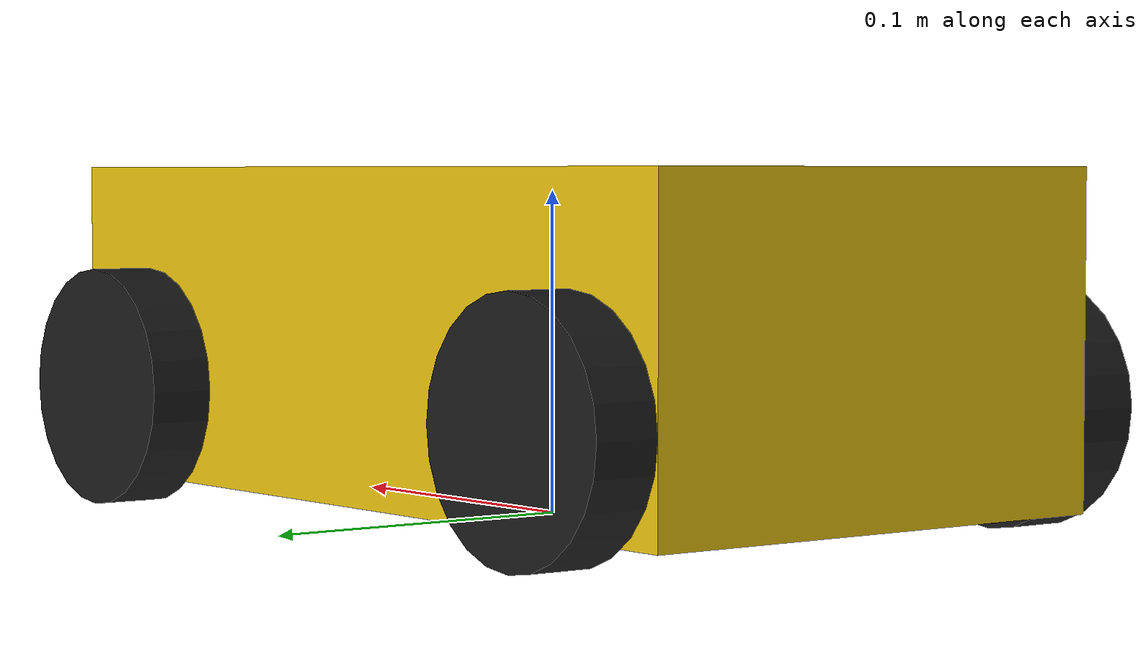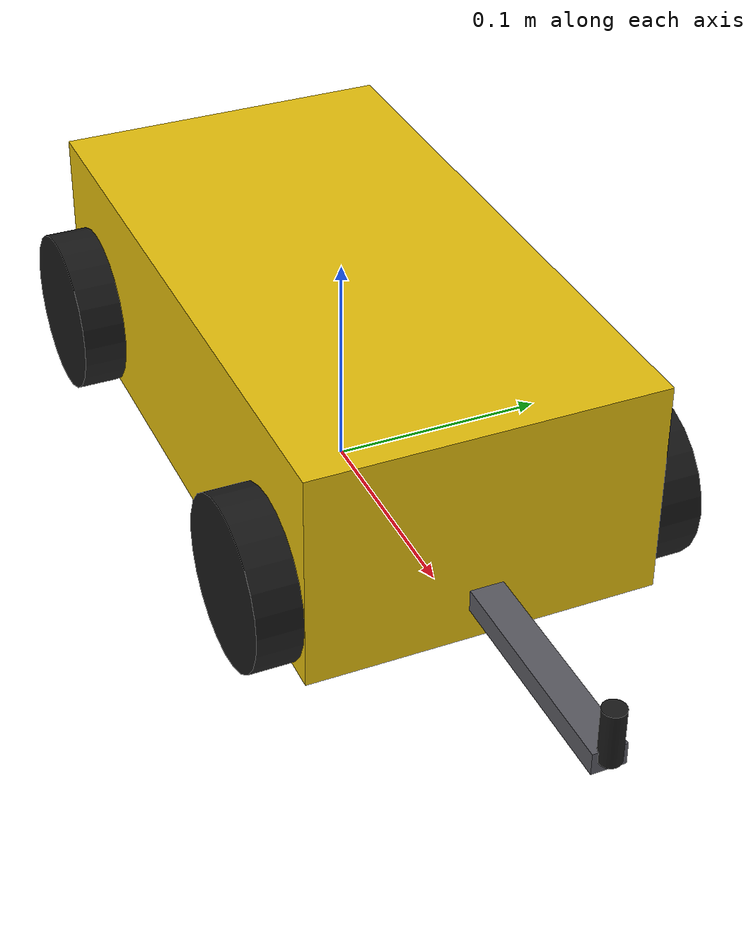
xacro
<?xml version="1.0"?>
<robot xmlns:xacro="http://www.ros.org/wiki/xacro" name="cargo_cart">

  <xacro:include filename="inertial.xacro"/>

  <!-- ─── Properties — footprint matches the robot's own chassis ─── -->
  <xacro:property name="cart_length"        value="0.297"/>
  <xacro:property name="cart_width"         value="0.158"/>
  <xacro:property name="cart_height"        value="0.1"/>
  <xacro:property name="cart_mass"          value="3.0"/>
  <xacro:property name="cart_ground_clearance" value="0.0075"/>

  <xacro:property name="cwheel_radius"      value="0.0375"/>
  <xacro:property name="cwheel_width"       value="0.02"/>
  <xacro:property name="cwheel_mass"        value="0.3"/>

  <xacro:property name="cart_z_offset"  value="${cart_ground_clearance + cart_height/2}"/>
  <xacro:property name="cwheel_z_offset" value="${cwheel_radius - cart_z_offset}"/>
  <xacro:property name="cwheel_x"       value="${cart_length/2 - cwheel_radius}"/>
  <xacro:property name="cwheel_y"       value="${cart_width/2 + cwheel_width/2}"/>

  <material name="cart_yellow">
    <color rgba="0.9 0.75 0.05 1.0"/>
  </material>
  <material name="cart_black">
    <color rgba="0.1 0.1 0.1 1.0"/>
  </material>
  <material name="cart_grey">
    <color rgba="0.35 0.35 0.38 1.0"/>
  </material>

  <!-- ─── Body ─── -->
  <link name="cart_footprint"/>

  <link name="cart_body">
    <visual>
      <geometry>
        <box size="${cart_length} ${cart_width} ${cart_height}"/>
      </geometry>
      <material name="cart_yellow"/>
    </visual>
    <collision>
      <geometry>
        <box size="${cart_length} ${cart_width} ${cart_height}"/>
      </geometry>
    </collision>
    <xacro:inertial_box mass="${cart_mass}" x="${cart_length}" y="${cart_width}" z="${cart_height}">
      <origin xyz="0 0 0" rpy="0 0 0"/>
    </xacro:inertial_box>
  </link>

  <gazebo reference="cart_body">
    <material>Gazebo/Yellow</material>
  </gazebo>

  <joint name="cart_footprint_joint" type="fixed">
    <parent link="cart_footprint"/>
    <child  link="cart_body"/>
    <origin xyz="0 0 ${cart_z_offset}" rpy="0 0 0"/>
  </joint>

  <!-- ─── Front tow hook — drawbar + coupling pin, fixed for now ─── -->
  <link name="cart_hook">
    <visual>
      <origin xyz="0.05 0 0" rpy="0 0 0"/>
      <geometry>
        <box size="0.1 0.015 0.01"/>
      </geometry>
      <material name="cart_grey"/>
    </visual>
    <visual>
      <origin xyz="0.1 0 0.0125" rpy="0 0 0"/>
      <geometry>
        <cylinder radius="0.005" length="0.025"/>
      </geometry>
      <material name="cart_black"/>
    </visual>
    <collision>
      <origin xyz="0.05 0 0" rpy="0 0 0"/>
      <geometry>
        <box size="0.1 0.015 0.01"/>
      </geometry>
    </collision>
    <xacro:inertial_box mass="0.2" x="0.1" y="0.015" z="0.01">
      <origin xyz="0.05 0 0" rpy="0 0 0"/>
    </xacro:inertial_box>
  </link>

  <joint name="cart_hook_joint" type="fixed">
    <parent link="cart_body"/>
    <child  link="cart_hook"/>
    <origin xyz="${cart_length/2} 0 ${-cart_height/2 + 0.02}" rpy="0 0 0"/>
  </joint>

  <!-- ─── Wheel macro — passive caster (unactuated, rolls freely) ─── -->
  <xacro:macro name="cart_wheel" params="name x y">
    <link name="${name}_wheel">
      <visual>
        <geometry>
          <cylinder radius="${cwheel_radius}" length="${cwheel_width}"/>
        </geometry>
        <material name="cart_black"/>
      </visual>
      <collision>
        <geometry>
          <cylinder radius="${cwheel_radius}" length="${cwheel_width}"/>
        </geometry>
      </collision>
      <xacro:inertial_cylinder mass="${cwheel_mass}" radius="${cwheel_radius}" length="${cwheel_width}">
        <origin xyz="0 0 0" rpy="0 0 0"/>
      </xacro:inertial_cylinder>
    </link>

    <joint name="${name}_wheel_joint" type="continuous">
      <parent link="cart_body"/>
      <child  link="${name}_wheel"/>
      <origin xyz="${x} ${y} ${cwheel_z_offset}" rpy="${-pi/2} 0 0"/>
      <axis xyz="0 0 1"/>
    </joint>

    <gazebo reference="${name}_wheel">
      <mu>1.2</mu>
      <mu2>1.2</mu2>
      <kp>1e6</kp>
      <kd>1.0</kd>
      <minDepth>0.001</minDepth>
    </gazebo>
  </xacro:macro>

  <xacro:cart_wheel name="fl" x="${cwheel_x}"  y="${cwheel_y}"/>
  <xacro:cart_wheel name="fr" x="${cwheel_x}"  y="${-cwheel_y}"/>
  <xacro:cart_wheel name="rl" x="${-cwheel_x}" y="${cwheel_y}"/>
  <xacro:cart_wheel name="rr" x="${-cwheel_x}" y="${-cwheel_y}"/>

</robot>
